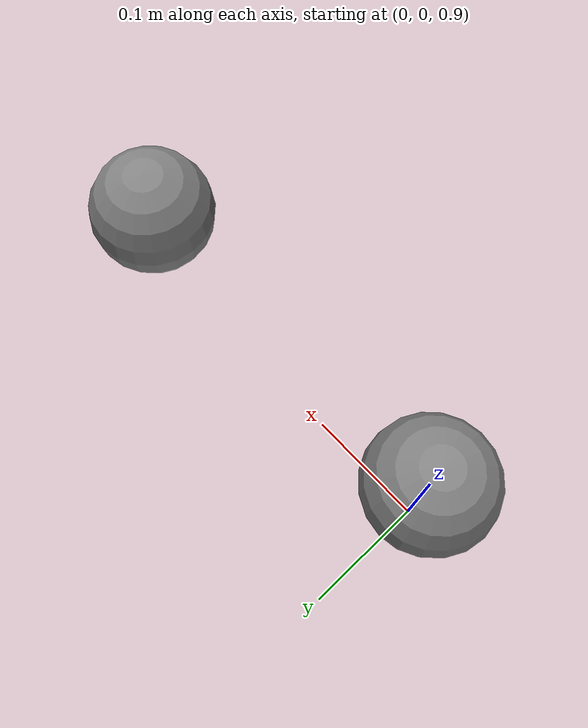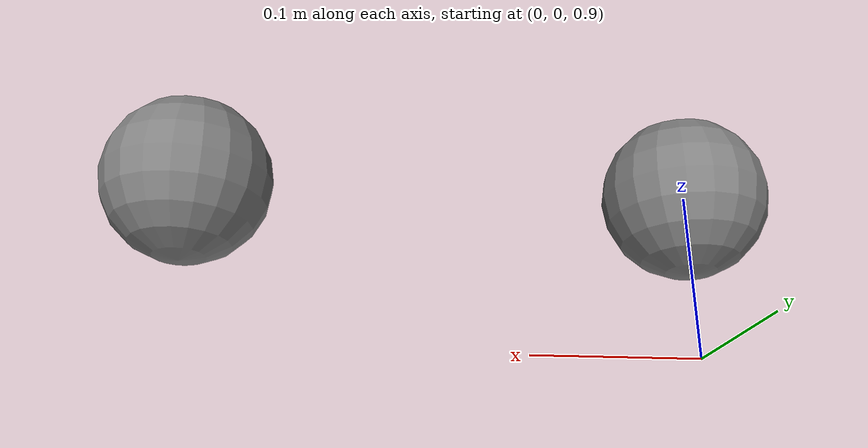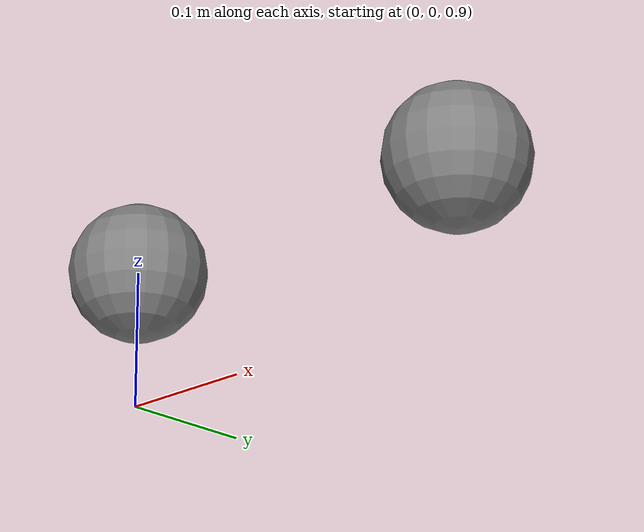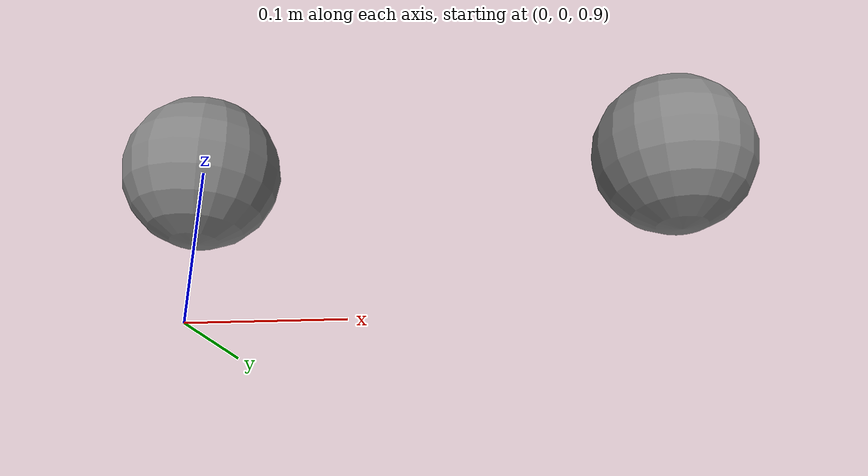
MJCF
<mujoco model="multi_connect">
            <option gravity="0 0 0" timestep="0.001"/>
            <worldbody>
                <body name="b1" pos="0 0 1">
                    <freejoint/>
                    <geom type="sphere" size="0.05" mass="0.5"/>
                </body>
                <body name="b2" pos="0.3 0 1">
                    <freejoint/>
                    <geom type="sphere" size="0.05" mass="0.5"/>
                </body>
            </worldbody>
            <equality>
                <connect body1="b1" anchor="0 0 0"/>
                <connect body1="b2" anchor="0 0 0" body2="b1"/>
            </equality>
        </mujoco>
